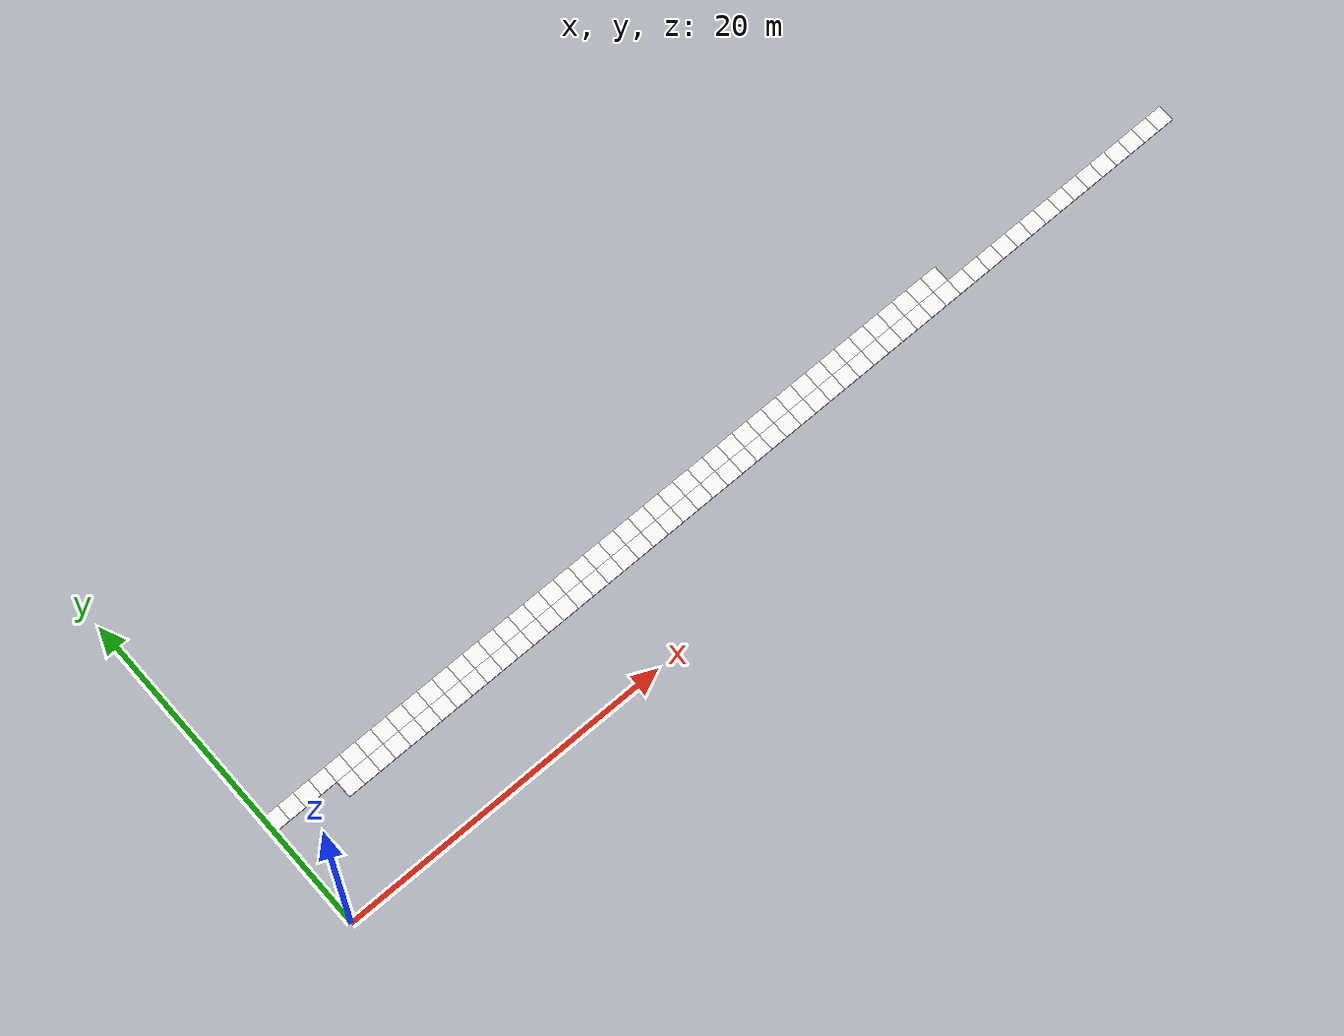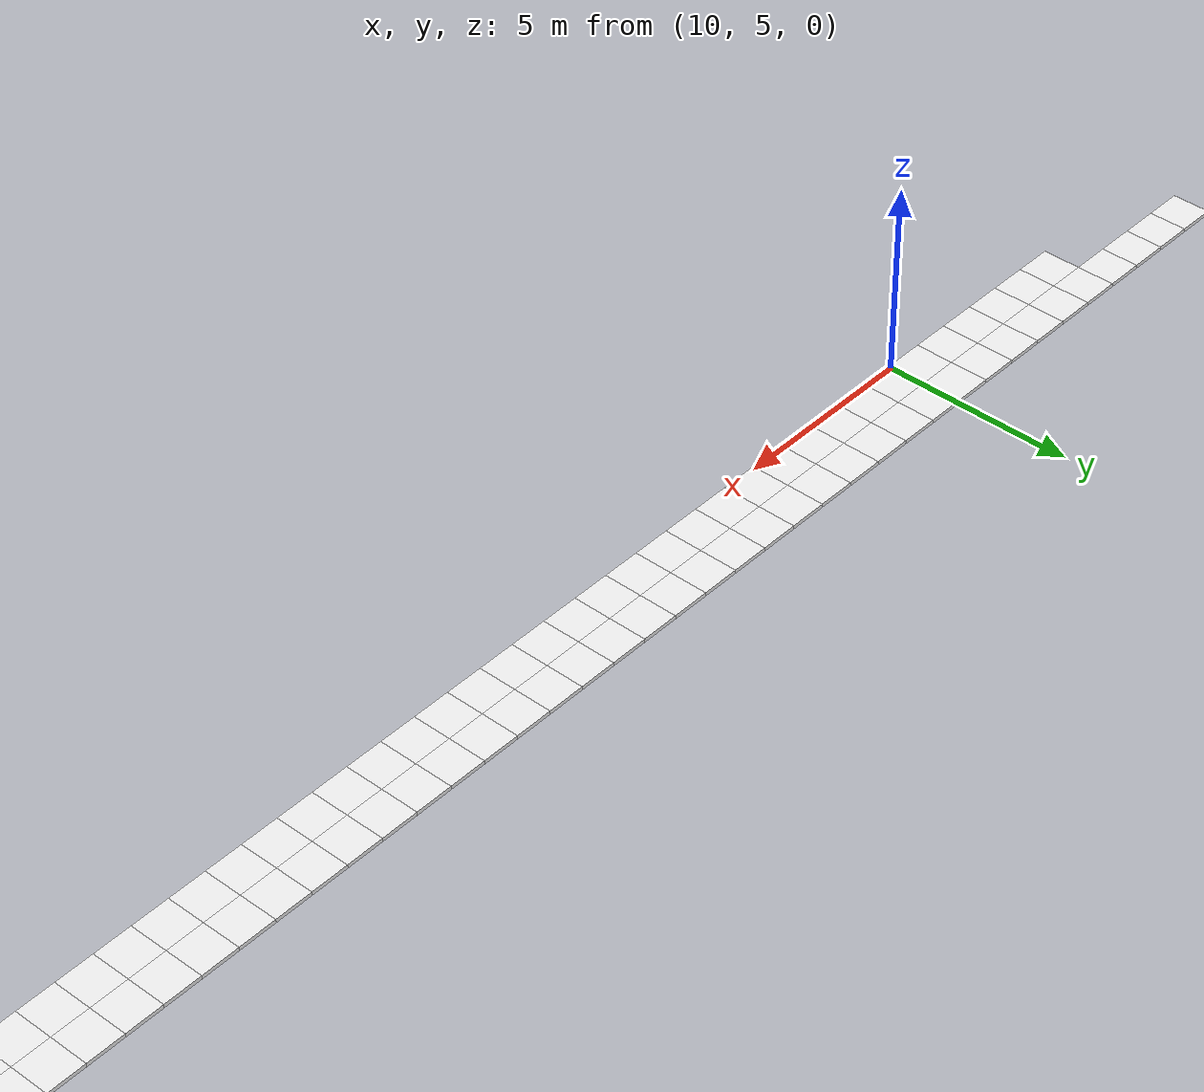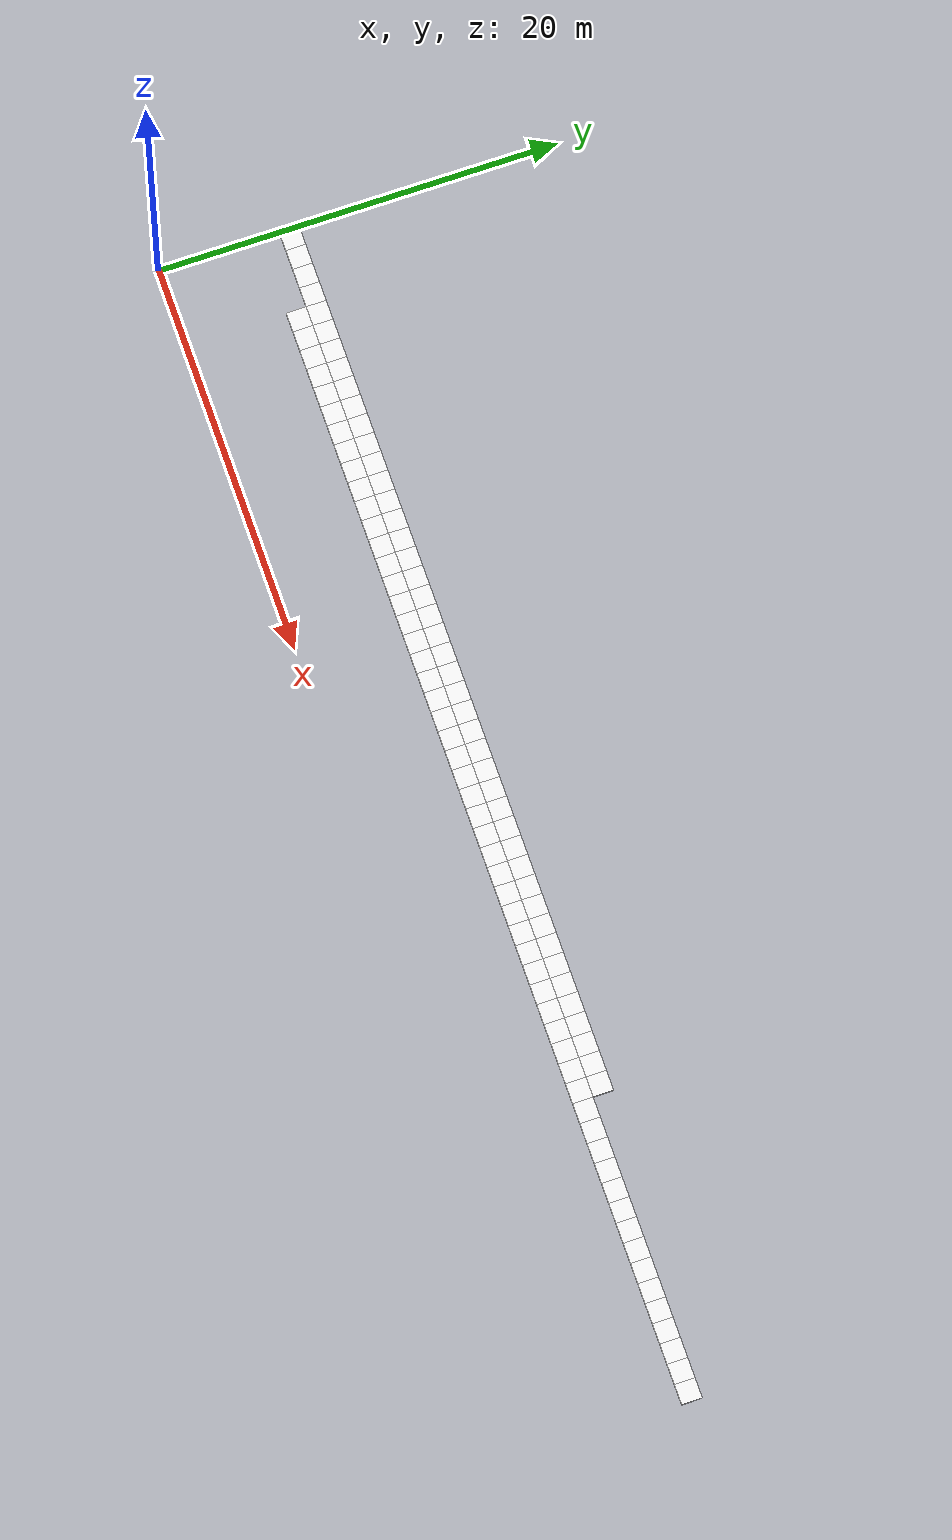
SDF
<sdf version="1.6">
 <world name="grid_world">
  <model name="cell_4_5">
   <static>true</static>
   <link name="link">
    <collision name="collision"><geometry><box><size>1 1 0.1</size></box></geometry></collision>
    <visual name="visual">
     <geometry><box><size>1 1 0.1</size></box></geometry>
     <material>
      <script><uri>file://media/materials/scripts/gazebo.material</uri><name>Gazebo/White</name></script>
     </material>
    </visual>
    <pose>4.5 5.5 0.05 0 0 0</pose>
   </link>
  </model>
  <model name="cell_5_5">
   <static>true</static>
   <link name="link">
    <collision name="collision"><geometry><box><size>1 1 0.1</size></box></geometry></collision>
    <visual name="visual">
     <geometry><box><size>1 1 0.1</size></box></geometry>
     <material>
      <script><uri>file://media/materials/scripts/gazebo.material</uri><name>Gazebo/White</name></script>
     </material>
    </visual>
    <pose>5.5 5.5 0.05 0 0 0</pose>
   </link>
  </model>
  <model name="cell_6_5">
   <static>true</static>
   <link name="link">
    <collision name="collision"><geometry><box><size>1 1 0.1</size></box></geometry></collision>
    <visual name="visual">
     <geometry><box><size>1 1 0.1</size></box></geometry>
     <material>
      <script><uri>file://media/materials/scripts/gazebo.material</uri><name>Gazebo/White</name></script>
     </material>
    </visual>
    <pose>6.5 5.5 0.05 0 0 0</pose>
   </link>
  </model>
  <model name="cell_7_5">
   <static>true</static>
   <link name="link">
    <collision name="collision"><geometry><box><size>1 1 0.1</size></box></geometry></collision>
    <visual name="visual">
     <geometry><box><size>1 1 0.1</size></box></geometry>
     <material>
      <script><uri>file://media/materials/scripts/gazebo.material</uri><name>Gazebo/White</name></script>
     </material>
    </visual>
    <pose>7.5 5.5 0.05 0 0 0</pose>
   </link>
  </model>
  <model name="cell_8_5">
   <static>true</static>
   <link name="link">
    <collision name="collision"><geometry><box><size>1 1 0.1</size></box></geometry></collision>
    <visual name="visual">
     <geometry><box><size>1 1 0.1</size></box></geometry>
     <material>
      <script><uri>file://media/materials/scripts/gazebo.material</uri><name>Gazebo/White</name></script>
     </material>
    </visual>
    <pose>8.5 5.5 0.05 0 0 0</pose>
   </link>
  </model>
  <model name="cell_9_5">
   <static>true</static>
   <link name="link">
    <collision name="collision"><geometry><box><size>1 1 0.1</size></box></geometry></collision>
    <visual name="visual">
     <geometry><box><size>1 1 0.1</size></box></geometry>
     <material>
      <script><uri>file://media/materials/scripts/gazebo.material</uri><name>Gazebo/White</name></script>
     </material>
    </visual>
    <pose>9.5 5.5 0.05 0 0 0</pose>
   </link>
  </model>
  <model name="cell_10_5">
   <static>true</static>
   <link name="link">
    <collision name="collision"><geometry><box><size>1 1 0.1</size></box></geometry></collision>
    <visual name="visual">
     <geometry><box><size>1 1 0.1</size></box></geometry>
     <material>
      <script><uri>file://media/materials/scripts/gazebo.material</uri><name>Gazebo/White</name></script>
     </material>
    </visual>
    <pose>10.5 5.5 0.05 0 0 0</pose>
   </link>
  </model>
  <model name="cell_11_5">
   <static>true</static>
   <link name="link">
    <collision name="collision"><geometry><box><size>1 1 0.1</size></box></geometry></collision>
    <visual name="visual">
     <geometry><box><size>1 1 0.1</size></box></geometry>
     <material>
      <script><uri>file://media/materials/scripts/gazebo.material</uri><name>Gazebo/White</name></script>
     </material>
    </visual>
    <pose>11.5 5.5 0.05 0 0 0</pose>
   </link>
  </model>
  <model name="cell_12_5">
   <static>true</static>
   <link name="link">
    <collision name="collision"><geometry><box><size>1 1 0.1</size></box></geometry></collision>
    <visual name="visual">
     <geometry><box><size>1 1 0.1</size></box></geometry>
     <material>
      <script><uri>file://media/materials/scripts/gazebo.material</uri><name>Gazebo/White</name></script>
     </material>
    </visual>
    <pose>12.5 5.5 0.05 0 0 0</pose>
   </link>
  </model>
  <model name="cell_13_5">
   <static>true</static>
   <link name="link">
    <collision name="collision"><geometry><box><size>1 1 0.1</size></box></geometry></collision>
    <visual name="visual">
     <geometry><box><size>1 1 0.1</size></box></geometry>
     <material>
      <script><uri>file://media/materials/scripts/gazebo.material</uri><name>Gazebo/White</name></script>
     </material>
    </visual>
    <pose>13.5 5.5 0.05 0 0 0</pose>
   </link>
  </model>
  <model name="cell_14_5">
   <static>true</static>
   <link name="link">
    <collision name="collision"><geometry><box><size>1 1 0.1</size></box></geometry></collision>
    <visual name="visual">
     <geometry><box><size>1 1 0.1</size></box></geometry>
     <material>
      <script><uri>file://media/materials/scripts/gazebo.material</uri><name>Gazebo/White</name></script>
     </material>
    </visual>
    <pose>14.5 5.5 0.05 0 0 0</pose>
   </link>
  </model>
  <model name="cell_15_5">
   <static>true</static>
   <link name="link">
    <collision name="collision"><geometry><box><size>1 1 0.1</size></box></geometry></collision>
    <visual name="visual">
     <geometry><box><size>1 1 0.1</size></box></geometry>
     <material>
      <script><uri>file://media/materials/scripts/gazebo.material</uri><name>Gazebo/White</name></script>
     </material>
    </visual>
    <pose>15.5 5.5 0.05 0 0 0</pose>
   </link>
  </model>
  <model name="cell_16_5">
   <static>true</static>
   <link name="link">
    <collision name="collision"><geometry><box><size>1 1 0.1</size></box></geometry></collision>
    <visual name="visual">
     <geometry><box><size>1 1 0.1</size></box></geometry>
     <material>
      <script><uri>file://media/materials/scripts/gazebo.material</uri><name>Gazebo/White</name></script>
     </material>
    </visual>
    <pose>16.5 5.5 0.05 0 0 0</pose>
   </link>
  </model>
  <model name="cell_17_5">
   <static>true</static>
   <link name="link">
    <collision name="collision"><geometry><box><size>1 1 0.1</size></box></geometry></collision>
    <visual name="visual">
     <geometry><box><size>1 1 0.1</size></box></geometry>
     <material>
      <script><uri>file://media/materials/scripts/gazebo.material</uri><name>Gazebo/White</name></script>
     </material>
    </visual>
    <pose>17.5 5.5 0.05 0 0 0</pose>
   </link>
  </model>
  <model name="cell_18_5">
   <static>true</static>
   <link name="link">
    <collision name="collision"><geometry><box><size>1 1 0.1</size></box></geometry></collision>
    <visual name="visual">
     <geometry><box><size>1 1 0.1</size></box></geometry>
     <material>
      <script><uri>file://media/materials/scripts/gazebo.material</uri><name>Gazebo/White</name></script>
     </material>
    </visual>
    <pose>18.5 5.5 0.05 0 0 0</pose>
   </link>
  </model>
  <model name="cell_19_5">
   <static>true</static>
   <link name="link">
    <collision name="collision"><geometry><box><size>1 1 0.1</size></box></geometry></collision>
    <visual name="visual">
     <geometry><box><size>1 1 0.1</size></box></geometry>
     <material>
      <script><uri>file://media/materials/scripts/gazebo.material</uri><name>Gazebo/White</name></script>
     </material>
    </visual>
    <pose>19.5 5.5 0.05 0 0 0</pose>
   </link>
  </model>
  <model name="cell_20_5">
   <static>true</static>
   <link name="link">
    <collision name="collision"><geometry><box><size>1 1 0.1</size></box></geometry></collision>
    <visual name="visual">
     <geometry><box><size>1 1 0.1</size></box></geometry>
     <material>
      <script><uri>file://media/materials/scripts/gazebo.material</uri><name>Gazebo/White</name></script>
     </material>
    </visual>
    <pose>20.5 5.5 0.05 0 0 0</pose>
   </link>
  </model>
  <model name="cell_21_5">
   <static>true</static>
   <link name="link">
    <collision name="collision"><geometry><box><size>1 1 0.1</size></box></geometry></collision>
    <visual name="visual">
     <geometry><box><size>1 1 0.1</size></box></geometry>
     <material>
      <script><uri>file://media/materials/scripts/gazebo.material</uri><name>Gazebo/White</name></script>
     </material>
    </visual>
    <pose>21.5 5.5 0.05 0 0 0</pose>
   </link>
  </model>
  <model name="cell_22_5">
   <static>true</static>
   <link name="link">
    <collision name="collision"><geometry><box><size>1 1 0.1</size></box></geometry></collision>
    <visual name="visual">
     <geometry><box><size>1 1 0.1</size></box></geometry>
     <material>
      <script><uri>file://media/materials/scripts/gazebo.material</uri><name>Gazebo/White</name></script>
     </material>
    </visual>
    <pose>22.5 5.5 0.05 0 0 0</pose>
   </link>
  </model>
  <model name="cell_23_5">
   <static>true</static>
   <link name="link">
    <collision name="collision"><geometry><box><size>1 1 0.1</size></box></geometry></collision>
    <visual name="visual">
     <geometry><box><size>1 1 0.1</size></box></geometry>
     <material>
      <script><uri>file://media/materials/scripts/gazebo.material</uri><name>Gazebo/White</name></script>
     </material>
    </visual>
    <pose>23.5 5.5 0.05 0 0 0</pose>
   </link>
  </model>
  <model name="cell_24_5">
   <static>true</static>
   <link name="link">
    <collision name="collision"><geometry><box><size>1 1 0.1</size></box></geometry></collision>
    <visual name="visual">
     <geometry><box><size>1 1 0.1</size></box></geometry>
     <material>
      <script><uri>file://media/materials/scripts/gazebo.material</uri><name>Gazebo/White</name></script>
     </material>
    </visual>
    <pose>24.5 5.5 0.05 0 0 0</pose>
   </link>
  </model>
  <model name="cell_25_5">
   <static>true</static>
   <link name="link">
    <collision name="collision"><geometry><box><size>1 1 0.1</size></box></geometry></collision>
    <visual name="visual">
     <geometry><box><size>1 1 0.1</size></box></geometry>
     <material>
      <script><uri>file://media/materials/scripts/gazebo.material</uri><name>Gazebo/White</name></script>
     </material>
    </visual>
    <pose>25.5 5.5 0.05 0 0 0</pose>
   </link>
  </model>
  <model name="cell_26_5">
   <static>true</static>
   <link name="link">
    <collision name="collision"><geometry><box><size>1 1 0.1</size></box></geometry></collision>
    <visual name="visual">
     <geometry><box><size>1 1 0.1</size></box></geometry>
     <material>
      <script><uri>file://media/materials/scripts/gazebo.material</uri><name>Gazebo/White</name></script>
     </material>
    </visual>
    <pose>26.5 5.5 0.05 0 0 0</pose>
   </link>
  </model>
  <model name="cell_27_5">
   <static>true</static>
   <link name="link">
    <collision name="collision"><geometry><box><size>1 1 0.1</size></box></geometry></collision>
    <visual name="visual">
     <geometry><box><size>1 1 0.1</size></box></geometry>
     <material>
      <script><uri>file://media/materials/scripts/gazebo.material</uri><name>Gazebo/White</name></script>
     </material>
    </visual>
    <pose>27.5 5.5 0.05 0 0 0</pose>
   </link>
  </model>
  <model name="cell_28_5">
   <static>true</static>
   <link name="link">
    <collision name="collision"><geometry><box><size>1 1 0.1</size></box></geometry></collision>
    <visual name="visual">
     <geometry><box><size>1 1 0.1</size></box></geometry>
     <material>
      <script><uri>file://media/materials/scripts/gazebo.material</uri><name>Gazebo/White</name></script>
     </material>
    </visual>
    <pose>28.5 5.5 0.05 0 0 0</pose>
   </link>
  </model>
  <model name="cell_29_5">
   <static>true</static>
   <link name="link">
    <collision name="collision"><geometry><box><size>1 1 0.1</size></box></geometry></collision>
    <visual name="visual">
     <geometry><box><size>1 1 0.1</size></box></geometry>
     <material>
      <script><uri>file://media/materials/scripts/gazebo.material</uri><name>Gazebo/White</name></script>
     </material>
    </visual>
    <pose>29.5 5.5 0.05 0 0 0</pose>
   </link>
  </model>
  <model name="cell_30_5">
   <static>true</static>
   <link name="link">
    <collision name="collision"><geometry><box><size>1 1 0.1</size></box></geometry></collision>
    <visual name="visual">
     <geometry><box><size>1 1 0.1</size></box></geometry>
     <material>
      <script><uri>file://media/materials/scripts/gazebo.material</uri><name>Gazebo/White</name></script>
     </material>
    </visual>
    <pose>30.5 5.5 0.05 0 0 0</pose>
   </link>
  </model>
  <model name="cell_31_5">
   <static>true</static>
   <link name="link">
    <collision name="collision"><geometry><box><size>1 1 0.1</size></box></geometry></collision>
    <visual name="visual">
     <geometry><box><size>1 1 0.1</size></box></geometry>
     <material>
      <script><uri>file://media/materials/scripts/gazebo.material</uri><name>Gazebo/White</name></script>
     </material>
    </visual>
    <pose>31.5 5.5 0.05 0 0 0</pose>
   </link>
  </model>
  <model name="cell_32_5">
   <static>true</static>
   <link name="link">
    <collision name="collision"><geometry><box><size>1 1 0.1</size></box></geometry></collision>
    <visual name="visual">
     <geometry><box><size>1 1 0.1</size></box></geometry>
     <material>
      <script><uri>file://media/materials/scripts/gazebo.material</uri><name>Gazebo/White</name></script>
     </material>
    </visual>
    <pose>32.5 5.5 0.05 0 0 0</pose>
   </link>
  </model>
  <model name="cell_33_5">
   <static>true</static>
   <link name="link">
    <collision name="collision"><geometry><box><size>1 1 0.1</size></box></geometry></collision>
    <visual name="visual">
     <geometry><box><size>1 1 0.1</size></box></geometry>
     <material>
      <script><uri>file://media/materials/scripts/gazebo.material</uri><name>Gazebo/White</name></script>
     </material>
    </visual>
    <pose>33.5 5.5 0.05 0 0 0</pose>
   </link>
  </model>
  <model name="cell_34_5">
   <static>true</static>
   <link name="link">
    <collision name="collision"><geometry><box><size>1 1 0.1</size></box></geometry></collision>
    <visual name="visual">
     <geometry><box><size>1 1 0.1</size></box></geometry>
     <material>
      <script><uri>file://media/materials/scripts/gazebo.material</uri><name>Gazebo/White</name></script>
     </material>
    </visual>
    <pose>34.5 5.5 0.05 0 0 0</pose>
   </link>
  </model>
  <model name="cell_35_5">
   <static>true</static>
   <link name="link">
    <collision name="collision"><geometry><box><size>1 1 0.1</size></box></geometry></collision>
    <visual name="visual">
     <geometry><box><size>1 1 0.1</size></box></geometry>
     <material>
      <script><uri>file://media/materials/scripts/gazebo.material</uri><name>Gazebo/White</name></script>
     </material>
    </visual>
    <pose>35.5 5.5 0.05 0 0 0</pose>
   </link>
  </model>
  <model name="cell_36_5">
   <static>true</static>
   <link name="link">
    <collision name="collision"><geometry><box><size>1 1 0.1</size></box></geometry></collision>
    <visual name="visual">
     <geometry><box><size>1 1 0.1</size></box></geometry>
     <material>
      <script><uri>file://media/materials/scripts/gazebo.material</uri><name>Gazebo/White</name></script>
     </material>
    </visual>
    <pose>36.5 5.5 0.05 0 0 0</pose>
   </link>
  </model>
  <model name="cell_37_5">
   <static>true</static>
   <link name="link">
    <collision name="collision"><geometry><box><size>1 1 0.1</size></box></geometry></collision>
    <visual name="visual">
     <geometry><box><size>1 1 0.1</size></box></geometry>
     <material>
      <script><uri>file://media/materials/scripts/gazebo.material</uri><name>Gazebo/White</name></script>
     </material>
    </visual>
    <pose>37.5 5.5 0.05 0 0 0</pose>
   </link>
  </model>
  <model name="cell_38_5">
   <static>true</static>
   <link name="link">
    <collision name="collision"><geometry><box><size>1 1 0.1</size></box></geometry></collision>
    <visual name="visual">
     <geometry><box><size>1 1 0.1</size></box></geometry>
     <material>
      <script><uri>file://media/materials/scripts/gazebo.material</uri><name>Gazebo/White</name></script>
     </material>
    </visual>
    <pose>38.5 5.5 0.05 0 0 0</pose>
   </link>
  </model>
  <model name="cell_39_5">
   <static>true</static>
   <link name="link">
    <collision name="collision"><geometry><box><size>1 1 0.1</size></box></geometry></collision>
    <visual name="visual">
     <geometry><box><size>1 1 0.1</size></box></geometry>
     <material>
      <script><uri>file://media/materials/scripts/gazebo.material</uri><name>Gazebo/White</name></script>
     </material>
    </visual>
    <pose>39.5 5.5 0.05 0 0 0</pose>
   </link>
  </model>
  <model name="cell_40_5">
   <static>true</static>
   <link name="link">
    <collision name="collision"><geometry><box><size>1 1 0.1</size></box></geometry></collision>
    <visual name="visual">
     <geometry><box><size>1 1 0.1</size></box></geometry>
     <material>
      <script><uri>file://media/materials/scripts/gazebo.material</uri><name>Gazebo/White</name></script>
     </material>
    </visual>
    <pose>40.5 5.5 0.05 0 0 0</pose>
   </link>
  </model>
  <model name="cell_41_5">
   <static>true</static>
   <link name="link">
    <collision name="collision"><geometry><box><size>1 1 0.1</size></box></geometry></collision>
    <visual name="visual">
     <geometry><box><size>1 1 0.1</size></box></geometry>
     <material>
      <script><uri>file://media/materials/scripts/gazebo.material</uri><name>Gazebo/White</name></script>
     </material>
    </visual>
    <pose>41.5 5.5 0.05 0 0 0</pose>
   </link>
  </model>
  <model name="cell_42_5">
   <static>true</static>
   <link name="link">
    <collision name="collision"><geometry><box><size>1 1 0.1</size></box></geometry></collision>
    <visual name="visual">
     <geometry><box><size>1 1 0.1</size></box></geometry>
     <material>
      <script><uri>file://media/materials/scripts/gazebo.material</uri><name>Gazebo/White</name></script>
     </material>
    </visual>
    <pose>42.5 5.5 0.05 0 0 0</pose>
   </link>
  </model>
  <model name="cell_43_5">
   <static>true</static>
   <link name="link">
    <collision name="collision"><geometry><box><size>1 1 0.1</size></box></geometry></collision>
    <visual name="visual">
     <geometry><box><size>1 1 0.1</size></box></geometry>
     <material>
      <script><uri>file://media/materials/scripts/gazebo.material</uri><name>Gazebo/White</name></script>
     </material>
    </visual>
    <pose>43.5 5.5 0.05 0 0 0</pose>
   </link>
  </model>
  <model name="cell_44_5">
   <static>true</static>
   <link name="link">
    <collision name="collision"><geometry><box><size>1 1 0.1</size></box></geometry></collision>
    <visual name="visual">
     <geometry><box><size>1 1 0.1</size></box></geometry>
     <material>
      <script><uri>file://media/materials/scripts/gazebo.material</uri><name>Gazebo/White</name></script>
     </material>
    </visual>
    <pose>44.5 5.5 0.05 0 0 0</pose>
   </link>
  </model>
  <model name="cell_45_5">
   <static>true</static>
   <link name="link">
    <collision name="collision"><geometry><box><size>1 1 0.1</size></box></geometry></collision>
    <visual name="visual">
     <geometry><box><size>1 1 0.1</size></box></geometry>
     <material>
      <script><uri>file://media/materials/scripts/gazebo.material</uri><name>Gazebo/White</name></script>
     </material>
    </visual>
    <pose>45.5 5.5 0.05 0 0 0</pose>
   </link>
  </model>
  <model name="cell_46_5">
   <static>true</static>
   <link name="link">
    <collision name="collision"><geometry><box><size>1 1 0.1</size></box></geometry></collision>
    <visual name="visual">
     <geometry><box><size>1 1 0.1</size></box></geometry>
     <material>
      <script><uri>file://media/materials/scripts/gazebo.material</uri><name>Gazebo/White</name></script>
     </material>
    </visual>
    <pose>46.5 5.5 0.05 0 0 0</pose>
   </link>
  </model>
  <model name="cell_47_5">
   <static>true</static>
   <link name="link">
    <collision name="collision"><geometry><box><size>1 1 0.1</size></box></geometry></collision>
    <visual name="visual">
     <geometry><box><size>1 1 0.1</size></box></geometry>
     <material>
      <script><uri>file://media/materials/scripts/gazebo.material</uri><name>Gazebo/White</name></script>
     </material>
    </visual>
    <pose>47.5 5.5 0.05 0 0 0</pose>
   </link>
  </model>
  <model name="cell_48_5">
   <static>true</static>
   <link name="link">
    <collision name="collision"><geometry><box><size>1 1 0.1</size></box></geometry></collision>
    <visual name="visual">
     <geometry><box><size>1 1 0.1</size></box></geometry>
     <material>
      <script><uri>file://media/materials/scripts/gazebo.material</uri><name>Gazebo/White</name></script>
     </material>
    </visual>
    <pose>48.5 5.5 0.05 0 0 0</pose>
   </link>
  </model>
  <model name="cell_49_5">
   <static>true</static>
   <link name="link">
    <collision name="collision"><geometry><box><size>1 1 0.1</size></box></geometry></collision>
    <visual name="visual">
     <geometry><box><size>1 1 0.1</size></box></geometry>
     <material>
      <script><uri>file://media/materials/scripts/gazebo.material</uri><name>Gazebo/White</name></script>
     </material>
    </visual>
    <pose>49.5 5.5 0.05 0 0 0</pose>
   </link>
  </model>
  <model name="cell_50_5">
   <static>true</static>
   <link name="link">
    <collision name="collision"><geometry><box><size>1 1 0.1</size></box></geometry></collision>
    <visual name="visual">
     <geometry><box><size>1 1 0.1</size></box></geometry>
     <material>
      <script><uri>file://media/materials/scripts/gazebo.material</uri><name>Gazebo/White</name></script>
     </material>
    </visual>
    <pose>50.5 5.5 0.05 0 0 0</pose>
   </link>
  </model>
  <model name="cell_51_5">
   <static>true</static>
   <link name="link">
    <collision name="collision"><geometry><box><size>1 1 0.1</size></box></geometry></collision>
    <visual name="visual">
     <geometry><box><size>1 1 0.1</size></box></geometry>
     <material>
      <script><uri>file://media/materials/scripts/gazebo.material</uri><name>Gazebo/White</name></script>
     </material>
    </visual>
    <pose>51.5 5.5 0.05 0 0 0</pose>
   </link>
  </model>
  <model name="cell_52_5">
   <static>true</static>
   <link name="link">
    <collision name="collision"><geometry><box><size>1 1 0.1</size></box></geometry></collision>
    <visual name="visual">
     <geometry><box><size>1 1 0.1</size></box></geometry>
     <material>
      <script><uri>file://media/materials/scripts/gazebo.material</uri><name>Gazebo/White</name></script>
     </material>
    </visual>
    <pose>52.5 5.5 0.05 0 0 0</pose>
   </link>
  </model>
  <model name="cell_53_5">
   <static>true</static>
   <link name="link">
    <collision name="collision"><geometry><box><size>1 1 0.1</size></box></geometry></collision>
    <visual name="visual">
     <geometry><box><size>1 1 0.1</size></box></geometry>
     <material>
      <script><uri>file://media/materials/scripts/gazebo.material</uri><name>Gazebo/White</name></script>
     </material>
    </visual>
    <pose>53.5 5.5 0.05 0 0 0</pose>
   </link>
  </model>
  <model name="cell_54_5">
   <static>true</static>
   <link name="link">
    <collision name="collision"><geometry><box><size>1 1 0.1</size></box></geometry></collision>
    <visual name="visual">
     <geometry><box><size>1 1 0.1</size></box></geometry>
     <material>
      <script><uri>file://media/materials/scripts/gazebo.material</uri><name>Gazebo/White</name></script>
     </material>
    </visual>
    <pose>54.5 5.5 0.05 0 0 0</pose>
   </link>
  </model>
  <model name="cell_55_5">
   <static>true</static>
   <link name="link">
    <collision name="collision"><geometry><box><size>1 1 0.1</size></box></geometry></collision>
    <visual name="visual">
     <geometry><box><size>1 1 0.1</size></box></geometry>
     <material>
      <script><uri>file://media/materials/scripts/gazebo.material</uri><name>Gazebo/White</name></script>
     </material>
    </visual>
    <pose>55.5 5.5 0.05 0 0 0</pose>
   </link>
  </model>
  <model name="cell_56_5">
   <static>true</static>
   <link name="link">
    <collision name="collision"><geometry><box><size>1 1 0.1</size></box></geometry></collision>
    <visual name="visual">
     <geometry><box><size>1 1 0.1</size></box></geometry>
     <material>
      <script><uri>file://media/materials/scripts/gazebo.material</uri><name>Gazebo/White</name></script>
     </material>
    </visual>
    <pose>56.5 5.5 0.05 0 0 0</pose>
   </link>
  </model>
  <model name="cell_57_5">
   <static>true</static>
   <link name="link">
    <collision name="collision"><geometry><box><size>1 1 0.1</size></box></geometry></collision>
    <visual name="visual">
     <geometry><box><size>1 1 0.1</size></box></geometry>
     <material>
      <script><uri>file://media/materials/scripts/gazebo.material</uri><name>Gazebo/White</name></script>
     </material>
    </visual>
    <pose>57.5 5.5 0.05 0 0 0</pose>
   </link>
  </model>
  <model name="cell_58_5">
   <static>true</static>
   <link name="link">
    <collision name="collision"><geometry><box><size>1 1 0.1</size></box></geometry></collision>
    <visual name="visual">
     <geometry><box><size>1 1 0.1</size></box></geometry>
     <material>
      <script><uri>file://media/materials/scripts/gazebo.material</uri><name>Gazebo/White</name></script>
     </material>
    </visual>
    <pose>58.5 5.5 0.05 0 0 0</pose>
   </link>
  </model>
  <model name="cell_59_5">
   <static>true</static>
   <link name="link">
    <collision name="collision"><geometry><box><size>1 1 0.1</size></box></geometry></collision>
    <visual name="visual">
     <geometry><box><size>1 1 0.1</size></box></geometry>
     <material>
      <script><uri>file://media/materials/scripts/gazebo.material</uri><name>Gazebo/White</name></script>
     </material>
    </visual>
    <pose>59.5 5.5 0.05 0 0 0</pose>
   </link>
  </model>
  <model name="cell_0_6">
   <static>true</static>
   <link name="link">
    <collision name="collision"><geometry><box><size>1 1 0.1</size></box></geometry></collision>
    <visual name="visual">
     <geometry><box><size>1 1 0.1</size></box></geometry>
     <material>
      <script><uri>file://media/materials/scripts/gazebo.material</uri><name>Gazebo/White</name></script>
     </material>
    </visual>
    <pose>0.5 6.5 0.05 0 0 0</pose>
   </link>
  </model>
  <model name="cell_1_6">
   <static>true</static>
   <link name="link">
    <collision name="collision"><geometry><box><size>1 1 0.1</size></box></geometry></collision>
    <visual name="visual">
     <geometry><box><size>1 1 0.1</size></box></geometry>
     <material>
      <script><uri>file://media/materials/scripts/gazebo.material</uri><name>Gazebo/White</name></script>
     </material>
    </visual>
    <pose>1.5 6.5 0.05 0 0 0</pose>
   </link>
  </model>
  <model name="cell_2_6">
   <static>true</static>
   <link name="link">
    <collision name="collision"><geometry><box><size>1 1 0.1</size></box></geometry></collision>
    <visual name="visual">
     <geometry><box><size>1 1 0.1</size></box></geometry>
     <material>
      <script><uri>file://media/materials/scripts/gazebo.material</uri><name>Gazebo/White</name></script>
     </material>
    </visual>
    <pose>2.5 6.5 0.05 0 0 0</pose>
   </link>
  </model>
  <model name="cell_3_6">
   <static>true</static>
   <link name="link">
    <collision name="collision"><geometry><box><size>1 1 0.1</size></box></geometry></collision>
    <visual name="visual">
     <geometry><box><size>1 1 0.1</size></box></geometry>
     <material>
      <script><uri>file://media/materials/scripts/gazebo.material</uri><name>Gazebo/White</name></script>
     </material>
    </visual>
    <pose>3.5 6.5 0.05 0 0 0</pose>
   </link>
  </model>
  <model name="cell_4_6">
   <static>true</static>
   <link name="link">
    <collision name="collision"><geometry><box><size>1 1 0.1</size></box></geometry></collision>
    <visual name="visual">
     <geometry><box><size>1 1 0.1</size></box></geometry>
     <material>
      <script><uri>file://media/materials/scripts/gazebo.material</uri><name>Gazebo/White</name></script>
     </material>
    </visual>
    <pose>4.5 6.5 0.05 0 0 0</pose>
   </link>
  </model>
  <model name="cell_5_6">
   <static>true</static>
   <link name="link">
    <collision name="collision"><geometry><box><size>1 1 0.1</size></box></geometry></collision>
    <visual name="visual">
     <geometry><box><size>1 1 0.1</size></box></geometry>
     <material>
      <script><uri>file://media/materials/scripts/gazebo.material</uri><name>Gazebo/White</name></script>
     </material>
    </visual>
    <pose>5.5 6.5 0.05 0 0 0</pose>
   </link>
  </model>
  <model name="cell_6_6">
   <static>true</static>
   <link name="link">
    <collision name="collision"><geometry><box><size>1 1 0.1</size></box></geometry></collision>
    <visual name="visual">
     <geometry><box><size>1 1 0.1</size></box></geometry>
     <material>
      <script><uri>file://media/materials/scripts/gazebo.material</uri><name>Gazebo/White</name></script>
     </material>
    </visual>
    <pose>6.5 6.5 0.05 0 0 0</pose>
   </link>
  </model>
  <model name="cell_7_6">
   <static>true</static>
   <link name="link">
    <collision name="collision"><geometry><box><size>1 1 0.1</size></box></geometry></collision>
    <visual name="visual">
     <geometry><box><size>1 1 0.1</size></box></geometry>
     <material>
      <script><uri>file://media/materials/scripts/gazebo.material</uri><name>Gazebo/White</name></script>
     </material>
    </visual>
    <pose>7.5 6.5 0.05 0 0 0</pose>
   </link>
  </model>
  <model name="cell_8_6">
   <static>true</static>
   <link name="link">
    <collision name="collision"><geometry><box><size>1 1 0.1</size></box></geometry></collision>
    <visual name="visual">
     <geometry><box><size>1 1 0.1</size></box></geometry>
     <material>
      <script><uri>file://media/materials/scripts/gazebo.material</uri><name>Gazebo/White</name></script>
     </material>
    </visual>
    <pose>8.5 6.5 0.05 0 0 0</pose>
   </link>
  </model>
  <model name="cell_9_6">
   <static>true</static>
   <link name="link">
    <collision name="collision"><geometry><box><size>1 1 0.1</size></box></geometry></collision>
    <visual name="visual">
     <geometry><box><size>1 1 0.1</size></box></geometry>
     <material>
      <script><uri>file://media/materials/scripts/gazebo.material</uri><name>Gazebo/White</name></script>
     </material>
    </visual>
    <pose>9.5 6.5 0.05 0 0 0</pose>
   </link>
  </model>
  <model name="cell_10_6">
   <static>true</static>
   <link name="link">
    <collision name="collision"><geometry><box><size>1 1 0.1</size></box></geometry></collision>
    <visual name="visual">
     <geometry><box><size>1 1 0.1</size></box></geometry>
     <material>
      <script><uri>file://media/materials/scripts/gazebo.material</uri><name>Gazebo/White</name></script>
     </material>
    </visual>
    <pose>10.5 6.5 0.05 0 0 0</pose>
   </link>
  </model>
  <model name="cell_11_6">
   <static>true</static>
   <link name="link">
    <collision name="collision"><geometry><box><size>1 1 0.1</size></box></geometry></collision>
    <visual name="visual">
     <geometry><box><size>1 1 0.1</size></box></geometry>
     <material>
      <script><uri>file://media/materials/scripts/gazebo.material</uri><name>Gazebo/White</name></script>
     </material>
    </visual>
    <pose>11.5 6.5 0.05 0 0 0</pose>
   </link>
  </model>
  <model name="cell_12_6">
   <static>true</static>
   <link name="link">
    <collision name="collision"><geometry><box><size>1 1 0.1</size></box></geometry></collision>
    <visual name="visual">
     <geometry><box><size>1 1 0.1</size></box></geometry>
     <material>
      <script><uri>file://media/materials/scripts/gazebo.material</uri><name>Gazebo/White</name></script>
     </material>
    </visual>
    <pose>12.5 6.5 0.05 0 0 0</pose>
   </link>
  </model>
  <model name="cell_13_6">
   <static>true</static>
   <link name="link">
    <collision name="collision"><geometry><box><size>1 1 0.1</size></box></geometry></collision>
    <visual name="visual">
     <geometry><box><size>1 1 0.1</size></box></geometry>
     <material>
      <script><uri>file://media/materials/scripts/gazebo.material</uri><name>Gazebo/White</name></script>
     </material>
    </visual>
    <pose>13.5 6.5 0.05 0 0 0</pose>
   </link>
  </model>
  <model name="cell_14_6">
   <static>true</static>
   <link name="link">
    <collision name="collision"><geometry><box><size>1 1 0.1</size></box></geometry></collision>
    <visual name="visual">
     <geometry><box><size>1 1 0.1</size></box></geometry>
     <material>
      <script><uri>file://media/materials/scripts/gazebo.material</uri><name>Gazebo/White</name></script>
     </material>
    </visual>
    <pose>14.5 6.5 0.05 0 0 0</pose>
   </link>
  </model>
  <model name="cell_15_6">
   <static>true</static>
   <link name="link">
    <collision name="collision"><geometry><box><size>1 1 0.1</size></box></geometry></collision>
    <visual name="visual">
     <geometry><box><size>1 1 0.1</size></box></geometry>
     <material>
      <script><uri>file://media/materials/scripts/gazebo.material</uri><name>Gazebo/White</name></script>
     </material>
    </visual>
    <pose>15.5 6.5 0.05 0 0 0</pose>
   </link>
  </model>
  <model name="cell_16_6">
   <static>true</static>
   <link name="link">
    <collision name="collision"><geometry><box><size>1 1 0.1</size></box></geometry></collision>
    <visual name="visual">
     <geometry><box><size>1 1 0.1</size></box></geometry>
     <material>
      <script><uri>file://media/materials/scripts/gazebo.material</uri><name>Gazebo/White</name></script>
     </material>
    </visual>
    <pose>16.5 6.5 0.05 0 0 0</pose>
   </link>
  </model>
  <model name="cell_17_6">
   <static>true</static>
   <link name="link">
    <collision name="collision"><geometry><box><size>1 1 0.1</size></box></geometry></collision>
    <visual name="visual">
     <geometry><box><size>1 1 0.1</size></box></geometry>
     <material>
      <script><uri>file://media/materials/scripts/gazebo.material</uri><name>Gazebo/White</name></script>
     </material>
    </visual>
    <pose>17.5 6.5 0.05 0 0 0</pose>
   </link>
  </model>
  <model name="cell_18_6">
   <static>true</static>
   <link name="link">
    <collision name="collision"><geometry><box><size>1 1 0.1</size></box></geometry></collision>
    <visual name="visual">
     <geometry><box><size>1 1 0.1</size></box></geometry>
     <material>
      <script><uri>file://media/materials/scripts/gazebo.material</uri><name>Gazebo/White</name></script>
     </material>
    </visual>
    <pose>18.5 6.5 0.05 0 0 0</pose>
   </link>
  </model>
  <model name="cell_19_6">
   <static>true</static>
   <link name="link">
    <collision name="collision"><geometry><box><size>1 1 0.1</size></box></geometry></collision>
    <visual name="visual">
     <geometry><box><size>1 1 0.1</size></box></geometry>
     <material>
      <script><uri>file://media/materials/scripts/gazebo.material</uri><name>Gazebo/White</name></script>
     </material>
    </visual>
    <pose>19.5 6.5 0.05 0 0 0</pose>
   </link>
  </model>
  <model name="cell_20_6">
   <static>true</static>
   <link name="link">
    <collision name="collision"><geometry><box><size>1 1 0.1</size></box></geometry></collision>
    <visual name="visual">
     <geometry><box><size>1 1 0.1</size></box></geometry>
     <material>
      <script><uri>file://media/materials/scripts/gazebo.material</uri><name>Gazebo/White</name></script>
     </material>
    </visual>
    <pose>20.5 6.5 0.05 0 0 0</pose>
   </link>
  </model>
  <model name="cell_21_6">
   <static>true</static>
   <link name="link">
    <collision name="collision"><geometry><box><size>1 1 0.1</size></box></geometry></collision>
    <visual name="visual">
     <geometry><box><size>1 1 0.1</size></box></geometry>
     <material>
      <script><uri>file://media/materials/scripts/gazebo.material</uri><name>Gazebo/White</name></script>
     </material>
    </visual>
    <pose>21.5 6.5 0.05 0 0 0</pose>
   </link>
  </model>
  <model name="cell_22_6">
   <static>true</static>
   <link name="link">
    <collision name="collision"><geometry><box><size>1 1 0.1</size></box></geometry></collision>
    <visual name="visual">
     <geometry><box><size>1 1 0.1</size></box></geometry>
     <material>
      <script><uri>file://media/materials/scripts/gazebo.material</uri><name>Gazebo/White</name></script>
     </material>
    </visual>
    <pose>22.5 6.5 0.05 0 0 0</pose>
   </link>
  </model>
  <model name="cell_23_6">
   <static>true</static>
   <link name="link">
    <collision name="collision"><geometry><box><size>1 1 0.1</size></box></geometry></collision>
    <visual name="visual">
     <geometry><box><size>1 1 0.1</size></box></geometry>
     <material>
      <script><uri>file://media/materials/scripts/gazebo.material</uri><name>Gazebo/White</name></script>
     </material>
    </visual>
    <pose>23.5 6.5 0.05 0 0 0</pose>
   </link>
  </model>
  <model name="cell_24_6">
   <static>true</static>
   <link name="link">
    <collision name="collision"><geometry><box><size>1 1 0.1</size></box></geometry></collision>
    <visual name="visual">
     <geometry><box><size>1 1 0.1</size></box></geometry>
     <material>
      <script><uri>file://media/materials/scripts/gazebo.material</uri><name>Gazebo/White</name></script>
     </material>
    </visual>
    <pose>24.5 6.5 0.05 0 0 0</pose>
   </link>
  </model>
  <model name="cell_25_6">
   <static>true</static>
   <link name="link">
    <collision name="collision"><geometry><box><size>1 1 0.1</size></box></geometry></collision>
    <visual name="visual">
     <geometry><box><size>1 1 0.1</size></box></geometry>
     <material>
      <script><uri>file://media/materials/scripts/gazebo.material</uri><name>Gazebo/White</name></script>
     </material>
    </visual>
    <pose>25.5 6.5 0.05 0 0 0</pose>
   </link>
  </model>
  <model name="cell_26_6">
   <static>true</static>
   <link name="link">
    <collision name="collision"><geometry><box><size>1 1 0.1</size></box></geometry></collision>
    <visual name="visual">
     <geometry><box><size>1 1 0.1</size></box></geometry>
     <material>
      <script><uri>file://media/materials/scripts/gazebo.material</uri><name>Gazebo/White</name></script>
     </material>
    </visual>
    <pose>26.5 6.5 0.05 0 0 0</pose>
   </link>
  </model>
  <model name="cell_27_6">
   <static>true</static>
   <link name="link">
    <collision name="collision"><geometry><box><size>1 1 0.1</size></box></geometry></collision>
    <visual name="visual">
     <geometry><box><size>1 1 0.1</size></box></geometry>
     <material>
      <script><uri>file://media/materials/scripts/gazebo.material</uri><name>Gazebo/White</name></script>
     </material>
    </visual>
    <pose>27.5 6.5 0.05 0 0 0</pose>
   </link>
  </model>
  <model name="cell_28_6">
   <static>true</static>
   <link name="link">
    <collision name="collision"><geometry><box><size>1 1 0.1</size></box></geometry></collision>
    <visual name="visual">
     <geometry><box><size>1 1 0.1</size></box></geometry>
     <material>
      <script><uri>file://media/materials/scripts/gazebo.material</uri><name>Gazebo/White</name></script>
     </material>
    </visual>
    <pose>28.5 6.5 0.05 0 0 0</pose>
   </link>
  </model>
  <model name="cell_29_6">
   <static>true</static>
   <link name="link">
    <collision name="collision"><geometry><box><size>1 1 0.1</size></box></geometry></collision>
    <visual name="visual">
     <geometry><box><size>1 1 0.1</size></box></geometry>
     <material>
      <script><uri>file://media/materials/scripts/gazebo.material</uri><name>Gazebo/White</name></script>
     </material>
    </visual>
    <pose>29.5 6.5 0.05 0 0 0</pose>
   </link>
  </model>
  <model name="cell_30_6">
   <static>true</static>
   <link name="link">
    <collision name="collision"><geometry><box><size>1 1 0.1</size></box></geometry></collision>
    <visual name="visual">
     <geometry><box><size>1 1 0.1</size></box></geometry>
     <material>
      <script><uri>file://media/materials/scripts/gazebo.material</uri><name>Gazebo/White</name></script>
     </material>
    </visual>
    <pose>30.5 6.5 0.05 0 0 0</pose>
   </link>
  </model>
  <model name="cell_31_6">
   <static>true</static>
   <link name="link">
    <collision name="collision"><geometry><box><size>1 1 0.1</size></box></geometry></collision>
    <visual name="visual">
     <geometry><box><size>1 1 0.1</size></box></geometry>
     <material>
      <script><uri>file://media/materials/scripts/gazebo.material</uri><name>Gazebo/White</name></script>
     </material>
    </visual>
    <pose>31.5 6.5 0.05 0 0 0</pose>
   </link>
  </model>
  <model name="cell_32_6">
   <static>true</static>
   <link name="link">
    <collision name="collision"><geometry><box><size>1 1 0.1</size></box></geometry></collision>
    <visual name="visual">
     <geometry><box><size>1 1 0.1</size></box></geometry>
     <material>
      <script><uri>file://media/materials/scripts/gazebo.material</uri><name>Gazebo/White</name></script>
     </material>
    </visual>
    <pose>32.5 6.5 0.05 0 0 0</pose>
   </link>
  </model>
  <model name="cell_33_6">
   <static>true</static>
   <link name="link">
    <collision name="collision"><geometry><box><size>1 1 0.1</size></box></geometry></collision>
    <visual name="visual">
     <geometry><box><size>1 1 0.1</size></box></geometry>
     <material>
      <script><uri>file://media/materials/scripts/gazebo.material</uri><name>Gazebo/White</name></script>
     </material>
    </visual>
    <pose>33.5 6.5 0.05 0 0 0</pose>
   </link>
  </model>
  <model name="cell_34_6">
   <static>true</static>
   <link name="link">
    <collision name="collision"><geometry><box><size>1 1 0.1</size></box></geometry></collision>
    <visual name="visual">
     <geometry><box><size>1 1 0.1</size></box></geometry>
     <material>
      <script><uri>file://media/materials/scripts/gazebo.material</uri><name>Gazebo/White</name></script>
     </material>
    </visual>
    <pose>34.5 6.5 0.05 0 0 0</pose>
   </link>
  </model>
  <model name="cell_35_6">
   <static>true</static>
   <link name="link">
    <collision name="collision"><geometry><box><size>1 1 0.1</size></box></geometry></collision>
    <visual name="visual">
     <geometry><box><size>1 1 0.1</size></box></geometry>
     <material>
      <script><uri>file://media/materials/scripts/gazebo.material</uri><name>Gazebo/White</name></script>
     </material>
    </visual>
    <pose>35.5 6.5 0.05 0 0 0</pose>
   </link>
  </model>
  <model name="cell_36_6">
   <static>true</static>
   <link name="link">
    <collision name="collision"><geometry><box><size>1 1 0.1</size></box></geometry></collision>
    <visual name="visual">
     <geometry><box><size>1 1 0.1</size></box></geometry>
     <material>
      <script><uri>file://media/materials/scripts/gazebo.material</uri><name>Gazebo/White</name></script>
     </material>
    </visual>
    <pose>36.5 6.5 0.05 0 0 0</pose>
   </link>
  </model>
  <model name="cell_37_6">
   <static>true</static>
   <link name="link">
    <collision name="collision"><geometry><box><size>1 1 0.1</size></box></geometry></collision>
    <visual name="visual">
     <geometry><box><size>1 1 0.1</size></box></geometry>
     <material>
      <script><uri>file://media/materials/scripts/gazebo.material</uri><name>Gazebo/White</name></script>
     </material>
    </visual>
    <pose>37.5 6.5 0.05 0 0 0</pose>
   </link>
  </model>
  <model name="cell_38_6">
   <static>true</static>
   <link name="link">
    <collision name="collision"><geometry><box><size>1 1 0.1</size></box></geometry></collision>
    <visual name="visual">
     <geometry><box><size>1 1 0.1</size></box></geometry>
     <material>
      <script><uri>file://media/materials/scripts/gazebo.material</uri><name>Gazebo/White</name></script>
     </material>
    </visual>
    <pose>38.5 6.5 0.05 0 0 0</pose>
   </link>
  </model>
  <model name="cell_39_6">
   <static>true</static>
   <link name="link">
    <collision name="collision"><geometry><box><size>1 1 0.1</size></box></geometry></collision>
    <visual name="visual">
     <geometry><box><size>1 1 0.1</size></box></geometry>
     <material>
      <script><uri>file://media/materials/scripts/gazebo.material</uri><name>Gazebo/White</name></script>
     </material>
    </visual>
    <pose>39.5 6.5 0.05 0 0 0</pose>
   </link>
  </model>
  <model name="cell_40_6">
   <static>true</static>
   <link name="link">
    <collision name="collision"><geometry><box><size>1 1 0.1</size></box></geometry></collision>
    <visual name="visual">
     <geometry><box><size>1 1 0.1</size></box></geometry>
     <material>
      <script><uri>file://media/materials/scripts/gazebo.material</uri><name>Gazebo/White</name></script>
     </material>
    </visual>
    <pose>40.5 6.5 0.05 0 0 0</pose>
   </link>
  </model>
  <model name="cell_41_6">
   <static>true</static>
   <link name="link">
    <collision name="collision"><geometry><box><size>1 1 0.1</size></box></geometry></collision>
    <visual name="visual">
     <geometry><box><size>1 1 0.1</size></box></geometry>
     <material>
      <script><uri>file://media/materials/scripts/gazebo.material</uri><name>Gazebo/White</name></script>
     </material>
    </visual>
    <pose>41.5 6.5 0.05 0 0 0</pose>
   </link>
  </model>
  <model name="cell_42_6">
   <static>true</static>
   <link name="link">
    <collision name="collision"><geometry><box><size>1 1 0.1</size></box></geometry></collision>
    <visual name="visual">
     <geometry><box><size>1 1 0.1</size></box></geometry>
     <material>
      <script><uri>file://media/materials/scripts/gazebo.material</uri><name>Gazebo/White</name></script>
     </material>
    </visual>
    <pose>42.5 6.5 0.05 0 0 0</pose>
   </link>
  </model>
  <model name="cell_43_6">
   <static>true</static>
   <link name="link">
    <collision name="collision"><geometry><box><size>1 1 0.1</size></box></geometry></collision>
    <visual name="visual">
     <geometry><box><size>1 1 0.1</size></box></geometry>
     <material>
      <script><uri>file://media/materials/scripts/gazebo.material</uri><name>Gazebo/White</name></script>
     </material>
    </visual>
    <pose>43.5 6.5 0.05 0 0 0</pose>
   </link>
  </model>
  <model name="cell_44_6">
   <static>true</static>
   <link name="link">
    <collision name="collision"><geometry><box><size>1 1 0.1</size></box></geometry></collision>
    <visual name="visual">
     <geometry><box><size>1 1 0.1</size></box></geometry>
     <material>
      <script><uri>file://media/materials/scripts/gazebo.material</uri><name>Gazebo/White</name></script>
     </material>
    </visual>
    <pose>44.5 6.5 0.05 0 0 0</pose>
   </link>
  </model>
 </world>
</sdf>
